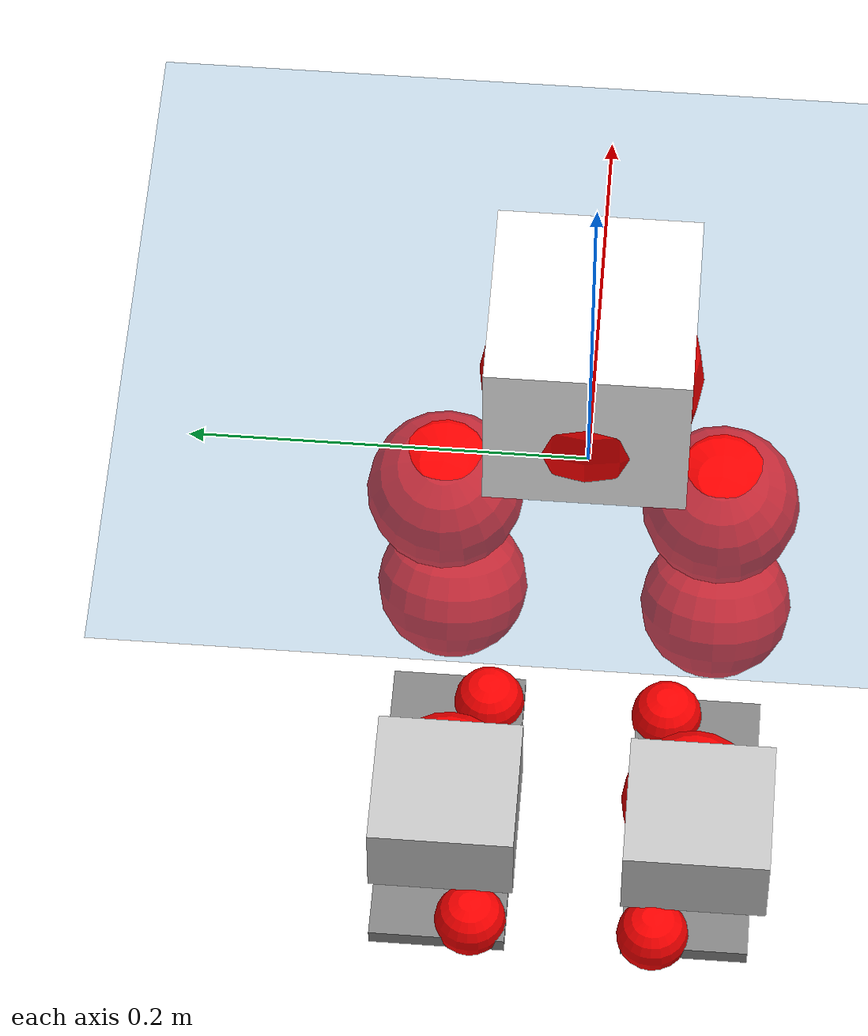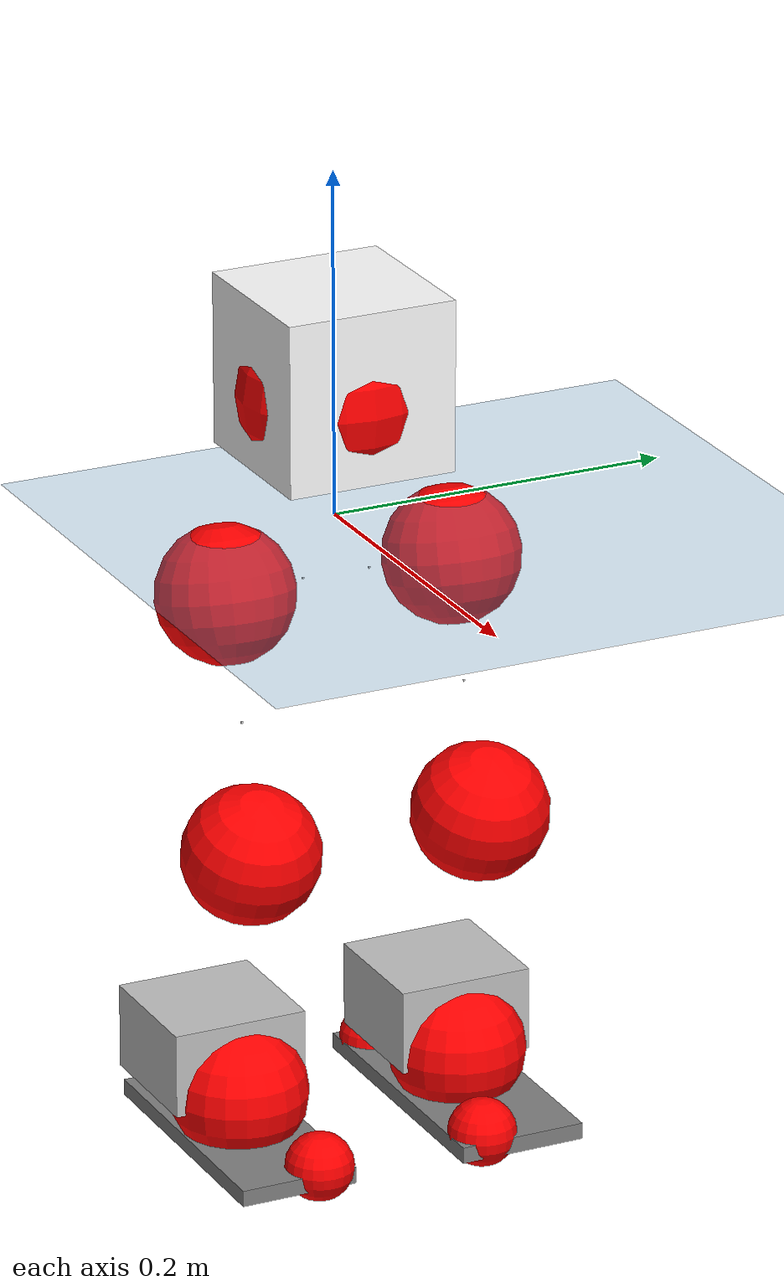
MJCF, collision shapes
<mujoco model="pi_12dof_release_v1">
  <compiler angle="radian" assetdir="assets" balanceinertia="true" inertiafromgeom="false"/>

  <option timestep="0.005" density="1.2" viscosity="2e-05"/>

  <size nkey="1"/>

  <visual>
    <quality shadowsize="8192"/>
    <map shadowclip="0.5"/>
  </visual>

  <default>
    <default class="/">
      <joint armature="0.01" damping="0.01" frictionloss="0.01"/>
      <geom contype="0" conaffinity="0" group="1" solref="-1000 -80"/>
      <site size="0.01 0.005 0.005" group="5"/>
      <general forcelimited="true" biastype="affine" gainprm="20" biasprm="0 -20 -0.5"/>
      <default class="foot">
        <geom size="0.0845 0.036 0.005" type="box" condim="6" group="4" priority="1" friction="0.9 0.2 0.2" solimp="0.015 1 0.005"/>
      </default>
      <default class="reward_collision_sphere">
        <geom group="5" rgba="1 0 0 1"/>
      </default>
    </default>
  </default>

  <asset>
    <texture type="skybox" colorspace="auto" name="//unnamed_texture_0" builtin="gradient" rgb1="0.95 0.95 0.95" rgb2="0.95 0.95 0.95" width="100" height="600"/>
    <texture type="2d" colorspace="auto" name="texplane" builtin="checker" rgb1="0.345 0.575 0.748" rgb2="0.345 0.575 0.748" markrgb="1 1 1" width="512" height="512"/>
    <material name="MatPlane" class="/" texture="texplane" texuniform="true" texrepeat="2 2" specular="0.9"/>
    <mesh name="baselink_1" class="/" file="baselink_1.STL"/>
    <mesh name="r_hip_pitch_link" class="/" file="r_hip_pitch_link.STL"/>
    <mesh name="r_hip_roll_link" class="/" file="r_hip_roll_link.STL"/>
    <mesh name="r_thigh_link" class="/" file="r_thigh_link.STL"/>
    <mesh name="r_calf_link" class="/" file="r_calf_link.STL"/>
    <mesh name="r_ankle_pitch_link" class="/" file="r_ankle_pitch_link.STL"/>
    <mesh name="r_ankle_roll_link" class="/" file="r_ankle_roll_link.STL"/>
    <mesh name="l_hip_pitch_link" class="/" file="l_hip_pitch_link.STL"/>
    <mesh name="l_hip_roll_link" class="/" file="l_hip_roll_link.STL"/>
    <mesh name="l_thigh_link" class="/" file="l_thigh_link.STL"/>
    <mesh name="l_calf_link" class="/" file="l_calf_link.STL"/>
    <mesh name="l_ankle_pitch_link" class="/" file="l_ankle_pitch_link.STL"/>
    <mesh name="l_ankle_roll_link" class="/" file="l_ankle_roll_link.STL"/>
  </asset>

  <worldbody>
    <geom name="floor" class="/" size="100 100 0.125" type="plane" group="0" material="MatPlane"/>
    <light name="toplight_shadow" class="/" pos="0 0 5" dir="0.0990148 0.0990148 -0.990148" type="directional" ambient="0.04 0.04 0.04" diffuse="0.55 0.55 0.55" specular="0.12 0.12 0.12"/>
    <light name="toplight_fill" class="/" pos="0 0 5" dir="0.0990148 0.0990148 -0.990148" type="directional" castshadow="false" ambient="0.04 0.04 0.04" diffuse="0.3 0.3 0.3" specular="0.08 0.08 0.08"/>
    <body name="trunk" pos="-0.000170496 -0.000142116 -0.000420667" quat="1 7.88958e-05 -0.000370673 0.0001738">
      <inertial pos="0.000905533 -0.00139635 0.042917" quat="0.695896 0.010386 0.0110068 0.717983" mass="2.15351" diaginertia="0.0125115 0.00489717 0.00535128"/>
      <joint name="//unnamed_joint_0" type="free"/>
      <geom name="//unnamed_geom_1" class="/" type="mesh" density="0" rgba="1 1 1 1" mesh="baselink_1"/>
      <geom name="//unnamed_geom_2" class="/" size="0.0497953 0.0497953 0.0497953" pos="0 0 0.084065" type="box" rgba="1 1 1 1"/>
      <geom name="//unnamed_geom_3" class="reward_collision_sphere" size="0.0547748" pos="0 0 0.0735569"/>
      <site name="imu" class="/" pos="0.00374356 0.000129912 -0.00364188" size="0.00995906"/>
      <camera name="track" class="/" pos="0 -1.7715 0" quat="0.707107 0.707107 0 0" mode="trackcom"/>
      <camera name="ego_camera" class="/" pos="0.0788366 0 0.189146" quat="-0.5 -0.5 0.5 0.5"/>
      <body name="r_hip_pitch_link" pos="0.000316533 -0.0193044 -0.0339413" quat="0.992197 3.58539e-06 -0.124682 -7.4141e-06">
        <inertial pos="0.00124065 -0.0494375 -1.7429e-06" quat="-0.0191065 0.706219 -0.0278603 0.707187" mass="0.354575" diaginertia="0.00013702 5.25454e-05 0.000104471"/>
        <joint name="r_hip_pitch_joint" class="/" pos="0 0 0" axis="-9.01052e-05 -0.999996 0.00270517" range="-1.74484 1.22913" armature="0.00982692" damping="0.0133212" frictionloss="0.010335"/>
        <geom name="//unnamed_geom_4" class="/" type="mesh" density="0" rgba="0.75294 0.75294 0.75294 1" mesh="r_hip_pitch_link"/>
        <geom name="//unnamed_geom_5" class="/" size="0.000497953 0.000497953 0.000497953" type="box" rgba="0.75294 0.75294 0.75294 1"/>
        <body name="r_hip_roll_link" pos="0.00127466 -0.0479499 -0.000919175" quat="1 9.6779e-05 0.000113308 -7.19808e-05">
          <inertial pos="-0.000954055 5.42282e-05 -0.0651137" quat="0.706178 -0.0799729 -0.0835261 0.698528" mass="0.386846" diaginertia="0.00042839 0.000149345 0.000164346"/>
          <joint name="r_hip_roll_joint" class="/" pos="0 0 0" axis="-0.999996 0.000310469 0.00286349" range="-0.112736 0.497599" armature="0.0103967" damping="0" frictionloss="0.0104168"/>
          <geom name="//unnamed_geom_6" class="/" type="mesh" density="0" rgba="0.75294 0.75294 0.75294 1" mesh="r_hip_roll_link"/>
          <geom name="//unnamed_geom_7" class="/" size="0.000497953 0.000497953 0.000497953" type="box" rgba="0.75294 0.75294 0.75294 1"/>
          <geom name="//unnamed_geom_8" class="reward_collision_sphere" size="0.0398362"/>
          <body name="r_thigh_link" pos="-0.000806242 0.00137725 -0.0724985" quat="1 -3.41845e-05 4.16603e-05 2.61389e-06">
            <inertial pos="0.000196214 0.000956129 -0.0489236" quat="0.737422 0.675433 4.84607e-05 -7.82201e-05" mass="0.110786" diaginertia="0.000159269 5.13317e-05 7.41376e-05"/>
            <joint name="r_thigh_joint" class="/" pos="0 0 0" axis="1.56065e-05 -0.000203659 -1" range="-0.290937 0.588037" armature="0.0104051" damping="0.0100605" frictionloss="0.0094947"/>
            <geom name="//unnamed_geom_9" class="/" type="mesh" density="0" rgba="0.75294 0.75294 0.75294 1" mesh="r_thigh_link"/>
            <geom name="//unnamed_geom_10" class="/" size="0.000497953 0.000497953 0.000497953" type="box" rgba="0.75294 0.75294 0.75294 1"/>
            <body name="r_calf_link" pos="-0.000989971 -0.00296342 -0.0741181" quat="0.947651 -4.54681e-07 0.319309 -1.94803e-07">
              <inertial pos="0.000373384 -0.00232442 -0.072639" quat="0.99997 -0.00734608 -0.00202776 0.00116163" mass="0.810201" diaginertia="0.00455812 0.00193654 0.000226193"/>
              <joint name="r_calf_joint" class="/" pos="0 0 0" axis="0.00231244 -0.999988 0.00421038" stiffness="0.00215185" range="-1.64929 0.633404" armature="0.0104591" damping="0.00884449" frictionloss="0.00990411"/>
              <geom name="//unnamed_geom_11" class="/" type="mesh" density="0" rgba="0.75294 0.75294 0.75294 1" mesh="r_calf_link"/>
              <geom name="//unnamed_geom_12" class="/" size="0.000497953 0.000497953 0.000497953" type="box" rgba="0.75294 0.75294 0.75294 1"/>
              <geom name="//unnamed_geom_13" class="reward_collision_sphere" size="0.0398362"/>
              <body name="r_ankle_pitch_link" pos="5.59354e-06 0.000912286 -0.147544" quat="0.980071 -7.11089e-05 -0.198648 -8.35714e-05">
                <inertial pos="0.00565734 0.00301052 0.000711454" quat="0.00392646 0.709382 0.000508709 0.704813" mass="0.172171" diaginertia="0.00039646 0.000120123 0.00015402"/>
                <joint name="r_ankle_pitch_joint" class="/" pos="0 0 0" axis="0.00150868 -0.999987 0.00484186" range="-1.29146 0.486201" armature="0.00948201" damping="0.00579267" frictionloss="0.00991401"/>
                <geom name="//unnamed_geom_14" class="/" type="mesh" density="0" rgba="0.75294 0.75294 0.75294 1" mesh="r_ankle_pitch_link"/>
                <geom name="//unnamed_geom_15" class="/" size="0.0388403 0.0398362 0.0248976" type="box" rgba="0.75294 0.75294 0.75294 1"/>
                <body name="r_ankle_roll_link" pos="0.0810501 0.00349346 -0.000473114" quat="1 -2.15266e-05 0.00012548 -0.000406909">
                  <inertial pos="-0.0249376 7.18158e-05 -0.0155196" quat="0.557414 0.427719 0.437672 0.561061" mass="0.504881" diaginertia="0.00143473 0.00056653 0.000361879"/>
                  <joint name="r_ankle_roll_joint" class="/" pos="0 0 0" axis="-0.999993 0.000416127 -0.00380537" range="-0.165484 0.149451" armature="0.0104258" damping="0.00672278" frictionloss="0.010024"/>
                  <geom name="//unnamed_geom_16" class="/" type="mesh" density="0" rgba="0.75294 0.75294 0.75294 1" mesh="r_ankle_roll_link"/>
                  <geom name="//unnamed_geom_17" class="/" type="mesh" rgba="0.75294 0.75294 0.75294 1" mesh="r_ankle_roll_link"/>
                  <geom name="right_foot" class="foot" size="0.081116 0.0347122 0.00476683" pos="-0.0536089 0 -0.0462358"/>
                  <geom name="//unnamed_geom_19" class="reward_collision_sphere" size="0.0398362" pos="-0.0525577 0 -0.0210163"/>
                  <geom name="//unnamed_geom_20" class="reward_collision_sphere" size="0.0199181" pos="0.0157673 0.017715 -0.0420325"/>
                  <geom name="//unnamed_geom_21" class="reward_collision_sphere" size="0.0199181" pos="-0.126139 0.017715 -0.0420325"/>
                  <site name="right_foot" class="foot" pos="-0.0536089 0 -0.0462358" size="0.00995906"/>
                </body>
              </body>
            </body>
          </body>
        </body>
      </body>
      <body name="l_hip_pitch_link" pos="0.000333308 0.0211149 -0.0347003" quat="0.9922 2.19587e-06 -0.124659 -9.86686e-06">
        <inertial pos="0.00105563 0.0469523 -0.00122416" quat="-0.0382424 0.705057 0.0295137 0.707503" mass="0.388973" diaginertia="0.000169791 5.76669e-05 0.000132043"/>
        <joint name="l_hip_pitch_joint" class="/" pos="0 0 0" axis="-0.000663545 1 -0.000488851" range="-1.23707 1.75217" armature="0.00980659" damping="0.00743862" frictionloss="0.0103265"/>
        <geom name="//unnamed_geom_22" class="/" type="mesh" density="0" rgba="0.75294 0.75294 0.75294 1" mesh="l_hip_pitch_link"/>
        <geom name="//unnamed_geom_23" class="/" size="0.000497953 0.000497953 0.000497953" type="box" rgba="0.75294 0.75294 0.75294 1"/>
        <body name="l_hip_roll_link" pos="0.000466706 0.0505456 -0.000400061" quat="1 0.000135101 5.0829e-05 -0.000104998">
          <inertial pos="-0.00270111 -0.000481303 -0.0653851" quat="0.699134 -0.0750742 -0.0790502 0.70663" mass="0.39011" diaginertia="0.000424025 0.000151315 0.000164787"/>
          <joint name="l_hip_roll_joint" class="/" pos="0 0 0" axis="-1 0.000576665 -0.00013646" stiffness="4.2925e-05" range="-0.508384 0.109987" armature="0.00984622" damping="0.00377332" frictionloss="0.0104252"/>
          <geom name="//unnamed_geom_24" class="/" type="mesh" density="0" rgba="0.75294 0.75294 0.75294 1" mesh="l_hip_roll_link"/>
          <geom name="//unnamed_geom_25" class="/" size="0.000497953 0.000497953 0.000497953" type="box" rgba="0.75294 0.75294 0.75294 1"/>
          <geom name="//unnamed_geom_26" class="reward_collision_sphere" size="0.0398362"/>
          <body name="l_thigh_link" pos="0.000389318 -0.00104456 -0.0717865" quat="1 9.32098e-06 5.48947e-05 -9.8836e-05">
            <inertial pos="-0.000539789 -0.00134403 -0.0494215" quat="0.67628 0.736634 0.00404975 0.000117741" mass="0.113262" diaginertia="0.000164856 5.27467e-05 7.54528e-05"/>
            <joint name="l_thigh_joint" class="/" pos="0 0 0" axis="-0.00126768 -0.000301899 -0.999999" range="-0.619527 0.315623" armature="0.00979584" damping="0.00253178" frictionloss="0.0100337"/>
            <geom name="//unnamed_geom_27" class="/" type="mesh" density="0" rgba="0.75294 0.75294 0.75294 1" mesh="l_thigh_link"/>
            <geom name="//unnamed_geom_28" class="/" size="0.000497953 0.000497953 0.000497953" type="box" rgba="0.75294 0.75294 0.75294 1"/>
            <body name="l_calf_link" pos="0.00104372 0.00055608 -0.074358" quat="0.947738 6.66999e-05 0.31905 -0.000133168">
              <inertial pos="0.00133094 0.0020369 -0.0748513" quat="0.999938 0.00718365 0.00653714 0.00540443" mass="0.790166" diaginertia="0.00443804 0.00187947 0.000219644"/>
              <joint name="l_calf_joint" class="/" pos="0 0 0" axis="0.00120212 0.999999 -0.000980917" stiffness="0.000850781" range="-0.652668 1.64244" armature="0.0101203" damping="0.00405901" frictionloss="0.00969218"/>
              <geom name="//unnamed_geom_29" class="/" type="mesh" density="0" rgba="0.75294 0.75294 0.75294 1" mesh="l_calf_link"/>
              <geom name="//unnamed_geom_30" class="/" size="0.000497953 0.000497953 0.000497953" type="box" rgba="0.75294 0.75294 0.75294 1"/>
              <geom name="//unnamed_geom_31" class="reward_collision_sphere" size="0.0398362"/>
              <body name="l_ankle_pitch_link" pos="0.00166533 -0.000160544 -0.147639" quat="0.980067 1.19863e-06 -0.198669 7.65475e-07">
                <inertial pos="0.00494907 -0.00170662 0.000438499" quat="-0.00238765 0.706769 0.00250378 0.707436" mass="0.176495" diaginertia="0.000400835 0.000122281 0.000154378"/>
                <joint name="l_ankle_pitch_joint" class="/" pos="0 0 0" axis="-9.38101e-05 1 2.1325e-05" range="-0.485157 1.31911" armature="0.0103215" damping="0.00721409" frictionloss="0.00958688"/>
                <geom name="//unnamed_geom_32" class="/" type="mesh" density="0" rgba="0.75294 0.75294 0.75294 1" mesh="l_ankle_pitch_link"/>
                <geom name="//unnamed_geom_33" class="/" size="0.0388403 0.0398362 0.0248976" type="box" rgba="0.75294 0.75294 0.75294 1"/>
                <body name="l_ankle_roll_link" pos="0.0786804 0.00044174 0.000287935" quat="1 -1.78853e-05 0.000129039 -0.000393984">
                  <inertial pos="-0.0260527 0.000617477 -0.0148418" quat="0.559304 0.431571 0.433137 0.559748" mass="0.515049" diaginertia="0.00147031 0.000562103 0.000366521"/>
                  <joint name="l_ankle_roll_joint" class="/" pos="0 0 0" axis="-1 -0.000380371 0.000114584" range="-0.150897 0.166412" armature="0.00987155" damping="0.0126304" frictionloss="0.00953838"/>
                  <geom name="//unnamed_geom_34" class="/" type="mesh" density="0" rgba="0.75294 0.75294 0.75294 1" mesh="l_ankle_roll_link"/>
                  <geom name="//unnamed_geom_35" class="/" type="mesh" rgba="0.75294 0.75294 0.75294 1" mesh="l_ankle_roll_link"/>
                  <geom name="left_foot" class="foot" size="0.0854182 0.037354 0.00480947" pos="-0.0536089 0 -0.0462358"/>
                  <geom name="//unnamed_geom_37" class="reward_collision_sphere" size="0.0398362" pos="-0.0525577 0 -0.0210163"/>
                  <geom name="//unnamed_geom_38" class="reward_collision_sphere" size="0.0199181" pos="0.0157673 -0.017715 -0.0420325"/>
                  <geom name="//unnamed_geom_39" class="reward_collision_sphere" size="0.0199181" pos="-0.126139 -0.017715 -0.0420325"/>
                  <site name="left_foot" class="foot" pos="-0.0536089 0 -0.0462358" size="0.00995906"/>
                </body>
              </body>
            </body>
          </body>
        </body>
      </body>
    </body>
  </worldbody>

  <contact>
    <pair class="/" geom1="floor" geom2="right_foot" name="//unnamed_contact_1"/>
    <pair class="/" geom1="floor" geom2="left_foot" name="//unnamed_contact_0"/>
  </contact>

  <actuator>
    <general name="r_hip_pitch_joint" class="/" joint="r_hip_pitch_joint" forcerange="-20.8205 20.8205" gainprm="19.2196" biasprm="0 -19.2196 -0.494364"/>
    <general name="r_hip_roll_joint" class="/" joint="r_hip_roll_joint" forcerange="-20.8282 20.8282" gainprm="19.2196" biasprm="0 -19.2196 -0.494364"/>
    <general name="r_thigh_joint" class="/" joint="r_thigh_joint" forcerange="-20.8701 20.8701" gainprm="19.2196" biasprm="0 -19.2196 -0.494364"/>
    <general name="r_calf_joint" class="/" joint="r_calf_joint" forcerange="-21.3797 21.3797" gainprm="19.2196" biasprm="0 -19.2196 -0.494364"/>
    <general name="r_ankle_pitch_joint" class="/" joint="r_ankle_pitch_joint" forcerange="-21.2753 21.2753" gainprm="19.2196" biasprm="0 -19.2196 -0.494364"/>
    <general name="r_ankle_roll_joint" class="/" joint="r_ankle_roll_joint" forcerange="-20.6971 20.6971" gainprm="19.2196" biasprm="0 -19.2196 -0.494364"/>
    <general name="l_hip_pitch_joint" class="/" joint="l_hip_pitch_joint" forcerange="-21.2104 21.2104" gainprm="19.2196" biasprm="0 -19.2196 -0.494364"/>
    <general name="l_hip_roll_joint" class="/" joint="l_hip_roll_joint" forcerange="-20.179 20.179" gainprm="19.2196" biasprm="0 -19.2196 -0.494364"/>
    <general name="l_thigh_joint" class="/" joint="l_thigh_joint" forcerange="-21.1977 21.1977" gainprm="19.2196" biasprm="0 -19.2196 -0.494364"/>
    <general name="l_calf_joint" class="/" joint="l_calf_joint" forcerange="-20.8271 20.8271" gainprm="19.2196" biasprm="0 -19.2196 -0.494364"/>
    <general name="l_ankle_pitch_joint" class="/" joint="l_ankle_pitch_joint" forcerange="-20.4167 20.4167" gainprm="19.2196" biasprm="0 -19.2196 -0.494364"/>
    <general name="l_ankle_roll_joint" class="/" joint="l_ankle_roll_joint" forcerange="-20.5518 20.5518" gainprm="19.2196" biasprm="0 -19.2196 -0.494364"/>
  </actuator>

  <sensor>
    <gyro site="imu" name="imu_angular_velocity"/>
    <velocimeter site="imu" name="imu_linear_velocity"/>
    <framelinvel objtype="site" objname="left_foot" name="left_foot_global_linear_velocity"/>
    <framelinvel objtype="site" objname="right_foot" name="right_foot_global_linear_velocity"/>
  </sensor>

  <keyframe>
    <key name="home" qpos="0 0 0.291 1 0 0 0 0.4 0 0 -0.8 0.4 0 -0.4 0 0 0.8 -0.4 0"/>
  </keyframe>
</mujoco>
